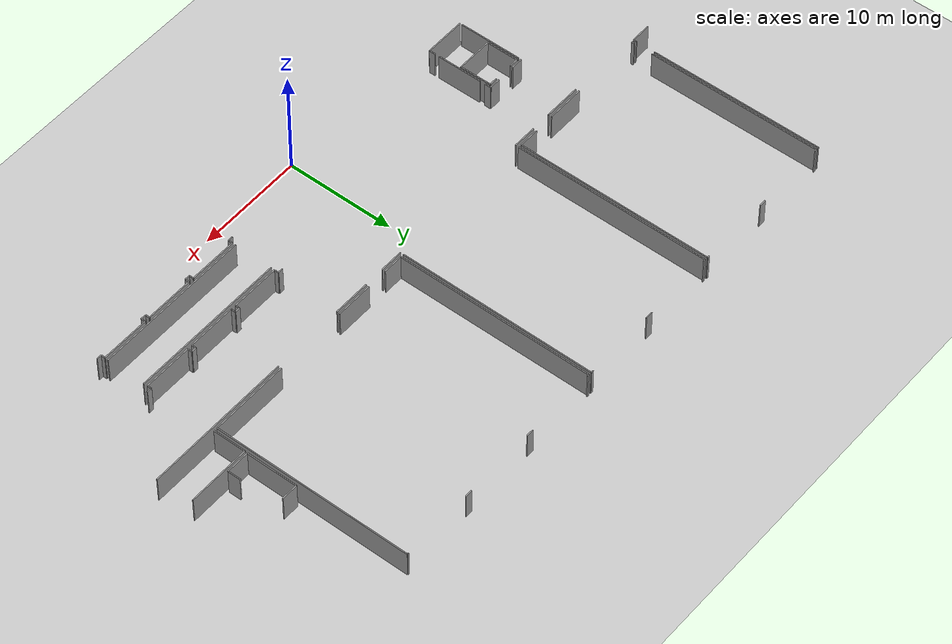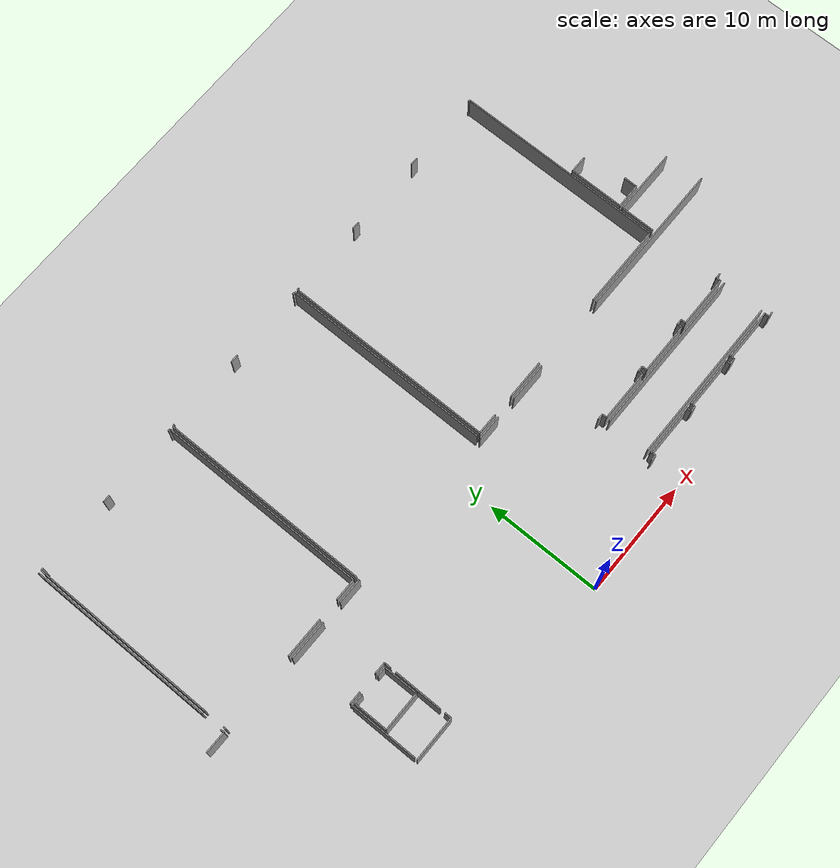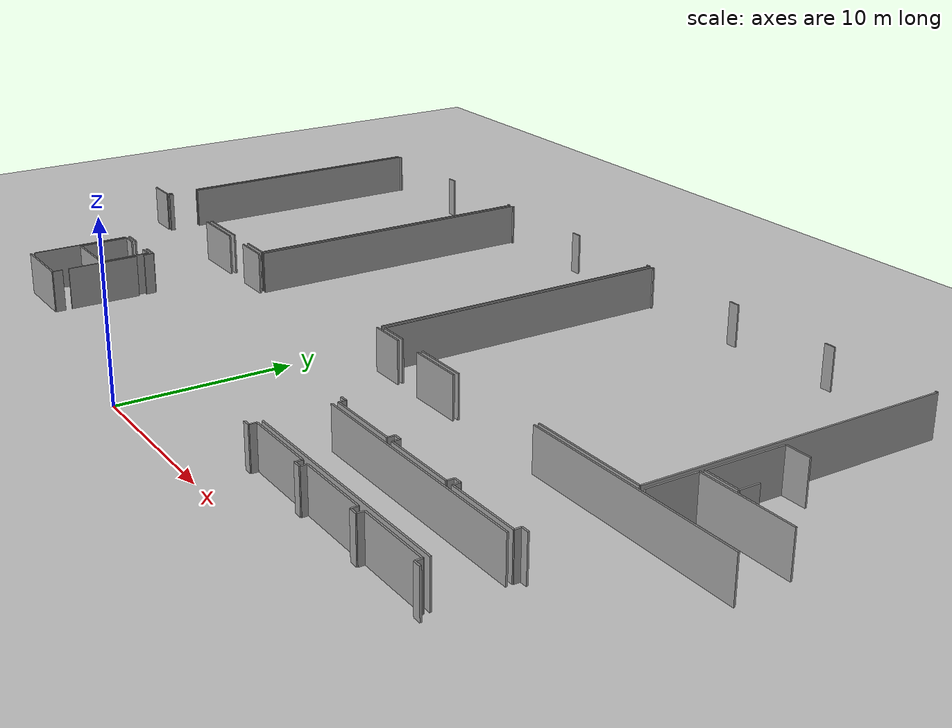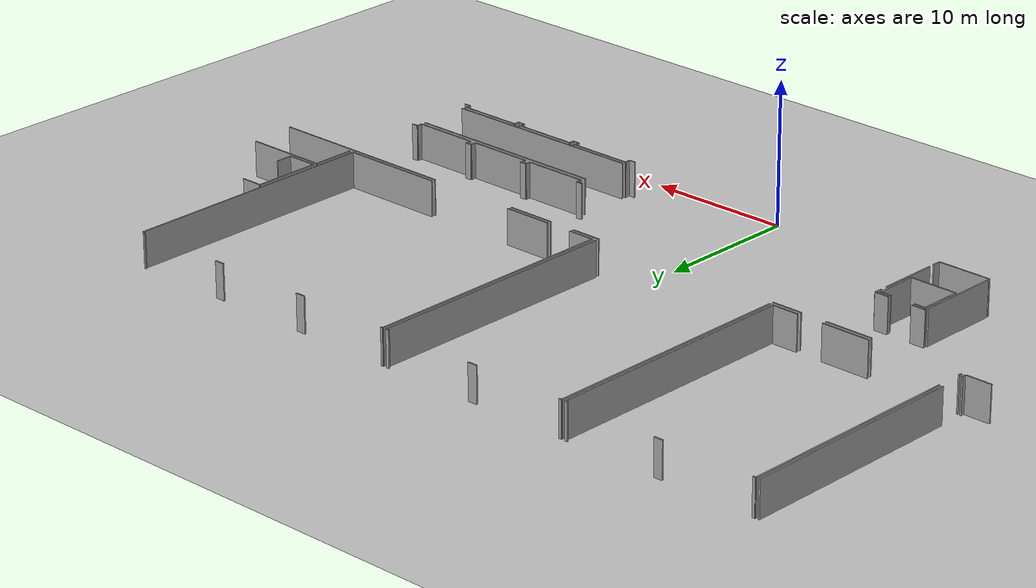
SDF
<sdf version="1.6">
 <world name="default">
  <model name="ground_plane">
   <static>1</static>
   <link name="link">
    <collision name="collision">
     <geometry><plane><normal>0 0 1</normal><size>100 100</size></plane></geometry>
     <surface><friction><ode><mu>100</mu><mu2>50</mu2></ode></friction></surface>
    </collision>
    <visual name="visual">
     <cast_shadows>0</cast_shadows>
     <geometry><plane><normal>0 0 1</normal><size>100 100</size></plane></geometry>
     <material>
      <script><uri>file://media/materials/scripts/gazebo.material</uri><name>Gazebo/Grey</name></script>
     </material>
    </visual>
   </link>
  </model>
  <model name="0510032217_A-40">
   <static>1</static>
   <link name="Wall_10">
    <collision name="Wall_10_Collision">
     <geometry><box><size>3.46969850777 0.1 2.5</size></box></geometry>
     <pose>1.73484925388 0 1.25 0 0 0</pose>
    </collision>
    <visual name="Wall_10_Visual">
     <pose>1.73484925388 0 1.25 0 0 0</pose>
     <geometry><box><size>3.46969850777 0.1 2.5</size></box></geometry>
     <material>
      <script><uri>file://media/materials/scripts/gazebo.material</uri><name>Gazebo/Grey</name></script>
      <ambient>1 1 1 1</ambient>
     </material>
    </visual>
    <pose>58.1786747538 -39.4602324637 0 0 0 0.0</pose>
   </link>
   <link name="Wall_11">
    <collision name="Wall_11_Collision">
     <geometry><box><size>2.21639935032 0.1 2.5</size></box></geometry>
     <pose>1.10819967516 0 1.25 0 0 0</pose>
    </collision>
    <visual name="Wall_11_Visual">
     <pose>1.10819967516 0 1.25 0 0 0</pose>
     <geometry><box><size>2.21639935032 0.1 2.5</size></box></geometry>
     <material>
      <script><uri>file://media/materials/scripts/gazebo.material</uri><name>Gazebo/Grey</name></script>
      <ambient>1 1 1 1</ambient>
     </material>
    </visual>
    <pose>63.5373946807 -39.4602324637 0 0 0 0.0</pose>
   </link>
   <link name="Wall_12">
    <collision name="Wall_12_Collision">
     <geometry><box><size>2.18010861841 0.1 2.5</size></box></geometry>
     <pose>1.09005430921 0 1.25 0 0 0</pose>
    </collision>
    <visual name="Wall_12_Visual">
     <pose>1.09005430921 0 1.25 0 0 0</pose>
     <geometry><box><size>2.18010861841 0.1 2.5</size></box></geometry>
     <material>
      <script><uri>file://media/materials/scripts/gazebo.material</uri><name>Gazebo/Grey</name></script>
      <ambient>1 1 1 1</ambient>
     </material>
    </visual>
    <pose>79.8513475789 -39.4602324637 0 0 0 0.0</pose>
   </link>
   <link name="Wall_13">
    <collision name="Wall_13_Collision">
     <geometry><box><size>3.42820525835 0.1 2.5</size></box></geometry>
     <pose>1.71410262917 0 1.25 0 0 0</pose>
    </collision>
    <visual name="Wall_13_Visual">
     <pose>1.71410262917 0 1.25 0 0 0</pose>
     <geometry><box><size>3.42820525835 0.1 2.5</size></box></geometry>
     <material>
      <script><uri>file://media/materials/scripts/gazebo.material</uri><name>Gazebo/Grey</name></script>
      <ambient>1 1 1 1</ambient>
     </material>
    </visual>
    <pose>83.9263145874 -39.4602324637 0 0 0 0.0</pose>
   </link>
   <link name="Wall_14">
    <collision name="Wall_14_Collision">
     <geometry><box><size>13.5959547254 0.1 2.5</size></box></geometry>
     <pose>6.7979773627 0 1.25 0 0 0</pose>
    </collision>
    <visual name="Wall_14_Visual">
     <pose>6.7979773627 0 1.25 0 0 0</pose>
     <geometry><box><size>13.5959547254 0.1 2.5</size></box></geometry>
     <material>
      <script><uri>file://media/materials/scripts/gazebo.material</uri><name>Gazebo/Grey</name></script>
      <ambient>1 1 1 1</ambient>
     </material>
    </visual>
    <pose>94.1161430312 -39.4602324637 0 0 0 0.0</pose>
   </link>
   <link name="Wall_26">
    <collision name="Wall_26_Collision">
     <geometry><box><size>0.450588772713 0.1 2.5</size></box></geometry>
     <pose>0.225294386357 0 1.25 0 0 0</pose>
    </collision>
    <visual name="Wall_26_Visual">
     <pose>0.225294386357 0 1.25 0 0 0</pose>
     <geometry><box><size>0.450588772713 0.1 2.5</size></box></geometry>
     <material>
      <script><uri>file://media/materials/scripts/gazebo.material</uri><name>Gazebo/Grey</name></script>
      <ambient>1 1 1 1</ambient>
     </material>
    </visual>
    <pose>102.113808243 -45.4237133286 0 0 0 3.14159265359</pose>
   </link>
   <link name="Wall_27">
    <collision name="Wall_27_Collision">
     <geometry><box><size>0.38917368795 0.1 2.5</size></box></geometry>
     <pose>0.194586843975 0 1.25 0 0 0</pose>
    </collision>
    <visual name="Wall_27_Visual">
     <pose>0.194586843975 0 1.25 0 0 0</pose>
     <geometry><box><size>0.38917368795 0.1 2.5</size></box></geometry>
     <material>
      <script><uri>file://media/materials/scripts/gazebo.material</uri><name>Gazebo/Grey</name></script>
      <ambient>1 1 1 1</ambient>
     </material>
    </visual>
    <pose>101.66321947 -45.4237133286 0 0 0 -1.57079632679</pose>
   </link>
   <link name="Wall_28">
    <collision name="Wall_28_Collision">
     <geometry><box><size>4.52200284235 0.1 2.5</size></box></geometry>
     <pose>2.26100142118 0 1.25 0 0 0</pose>
    </collision>
    <visual name="Wall_28_Visual">
     <pose>2.26100142118 0 1.25 0 0 0</pose>
     <geometry><box><size>4.52200284235 0.1 2.5</size></box></geometry>
     <material>
      <script><uri>file://media/materials/scripts/gazebo.material</uri><name>Gazebo/Grey</name></script>
      <ambient>1 1 1 1</ambient>
     </material>
    </visual>
    <pose>101.66321947 -45.8128870165 0 0 0 3.14159265359</pose>
   </link>
   <link name="Wall_29">
    <collision name="Wall_29_Collision">
     <geometry><box><size>0.408841741955 0.1 2.5</size></box></geometry>
     <pose>0.204420870978 0 1.25 0 0 0</pose>
    </collision>
    <visual name="Wall_29_Visual">
     <pose>0.204420870978 0 1.25 0 0 0</pose>
     <geometry><box><size>0.408841741955 0.1 2.5</size></box></geometry>
     <material>
      <script><uri>file://media/materials/scripts/gazebo.material</uri><name>Gazebo/Grey</name></script>
      <ambient>1 1 1 1</ambient>
     </material>
    </visual>
    <pose>97.1412166278 -45.8128870165 0 0 0 1.57079632679</pose>
   </link>
   <link name="Wall_30">
    <collision name="Wall_30_Collision">
     <geometry><box><size>0.458963556999 0.1 2.5</size></box></geometry>
     <pose>0.2294817785 0 1.25 0 0 0</pose>
    </collision>
    <visual name="Wall_30_Visual">
     <pose>0.2294817785 0 1.25 0 0 0</pose>
     <geometry><box><size>0.458963556999 0.1 2.5</size></box></geometry>
     <material>
      <script><uri>file://media/materials/scripts/gazebo.material</uri><name>Gazebo/Grey</name></script>
      <ambient>1 1 1 1</ambient>
     </material>
    </visual>
    <pose>97.1412166278 -45.4040452746 0 0 0 3.14159265359</pose>
   </link>
   <link name="Wall_31">
    <collision name="Wall_31_Collision">
     <geometry><box><size>0.425591310527 0.1 2.5</size></box></geometry>
     <pose>0.212795655263 0 1.25 0 0 0</pose>
    </collision>
    <visual name="Wall_31_Visual">
     <pose>0.212795655263 0 1.25 0 0 0</pose>
     <geometry><box><size>0.425591310527 0.1 2.5</size></box></geometry>
     <material>
      <script><uri>file://media/materials/scripts/gazebo.material</uri><name>Gazebo/Grey</name></script>
      <ambient>1 1 1 1</ambient>
     </material>
    </visual>
    <pose>96.6822530708 -45.4040452746 0 0 0 -1.57079632679</pose>
   </link>
   <link name="Wall_32">
    <collision name="Wall_32_Collision">
     <geometry><box><size>4.48736168917 0.1 2.5</size></box></geometry>
     <pose>2.24368084458 0 1.25 0 0 0</pose>
    </collision>
    <visual name="Wall_32_Visual">
     <pose>2.24368084458 0 1.25 0 0 0</pose>
     <geometry><box><size>4.48736168917 0.1 2.5</size></box></geometry>
     <material>
      <script><uri>file://media/materials/scripts/gazebo.material</uri><name>Gazebo/Grey</name></script>
      <ambient>1 1 1 1</ambient>
     </material>
    </visual>
    <pose>96.6822530708 -45.8296365851 0 0 0 3.14159265359</pose>
   </link>
   <link name="Wall_33">
    <collision name="Wall_33_Collision">
     <geometry><box><size>0.4335854228 0.1 2.5</size></box></geometry>
     <pose>0.2167927114 0 1.25 0 0 0</pose>
    </collision>
    <visual name="Wall_33_Visual">
     <pose>0.2167927114 0 1.25 0 0 0</pose>
     <geometry><box><size>0.4335854228 0.1 2.5</size></box></geometry>
     <material>
      <script><uri>file://media/materials/scripts/gazebo.material</uri><name>Gazebo/Grey</name></script>
      <ambient>1 1 1 1</ambient>
     </material>
    </visual>
    <pose>92.1948913816 -45.8296365851 0 0 0 1.57079632679</pose>
   </link>
   <link name="Wall_34">
    <collision name="Wall_34_Collision">
     <geometry><box><size>0.47177951477 0.1 2.5</size></box></geometry>
     <pose>0.235889757385 0 1.25 0 0 0</pose>
    </collision>
    <visual name="Wall_34_Visual">
     <pose>0.235889757385 0 1.25 0 0 0</pose>
     <geometry><box><size>0.47177951477 0.1 2.5</size></box></geometry>
     <material>
      <script><uri>file://media/materials/scripts/gazebo.material</uri><name>Gazebo/Grey</name></script>
      <ambient>1 1 1 1</ambient>
     </material>
    </visual>
    <pose>92.1948913816 -45.3960511623 0 0 0 3.14159265359</pose>
   </link>
   <link name="Wall_35">
    <collision name="Wall_35_Collision">
     <geometry><box><size>0.411506446046 0.1 2.5</size></box></geometry>
     <pose>0.205753223023 0 1.25 0 0 0</pose>
    </collision>
    <visual name="Wall_35_Visual">
     <pose>0.205753223023 0 1.25 0 0 0</pose>
     <geometry><box><size>0.411506446046 0.1 2.5</size></box></geometry>
     <material>
      <script><uri>file://media/materials/scripts/gazebo.material</uri><name>Gazebo/Grey</name></script>
      <ambient>1 1 1 1</ambient>
     </material>
    </visual>
    <pose>91.7231118668 -45.3960511623 0 0 0 -1.57079632679</pose>
   </link>
   <link name="Wall_36">
    <collision name="Wall_36_Collision">
     <geometry><box><size>4.50931377525 0.1 2.5</size></box></geometry>
     <pose>2.25465688763 0 1.25 0 0 0</pose>
    </collision>
    <visual name="Wall_36_Visual">
     <pose>2.25465688763 0 1.25 0 0 0</pose>
     <geometry><box><size>4.50931377525 0.1 2.5</size></box></geometry>
     <material>
      <script><uri>file://media/materials/scripts/gazebo.material</uri><name>Gazebo/Grey</name></script>
      <ambient>1 1 1 1</ambient>
     </material>
    </visual>
    <pose>91.7231118668 -45.8075576084 0 0 0 3.14159265359</pose>
   </link>
   <link name="Wall_37">
    <collision name="Wall_37_Collision">
     <geometry><box><size>0.400466957669 0.1 2.5</size></box></geometry>
     <pose>0.200233478835 0 1.25 0 0 0</pose>
    </collision>
    <visual name="Wall_37_Visual">
     <pose>0.200233478835 0 1.25 0 0 0</pose>
     <geometry><box><size>0.400466957669 0.1 2.5</size></box></geometry>
     <material>
      <script><uri>file://media/materials/scripts/gazebo.material</uri><name>Gazebo/Grey</name></script>
      <ambient>1 1 1 1</ambient>
     </material>
    </visual>
    <pose>87.2137980916 -45.8075576084 0 0 0 1.57079632679</pose>
   </link>
   <link name="Wall_38">
    <collision name="Wall_38_Collision">
     <geometry><box><size>0.460866917064 0.1 2.5</size></box></geometry>
     <pose>0.230433458532 0 1.25 0 0 0</pose>
    </collision>
    <visual name="Wall_38_Visual">
     <pose>0.230433458532 0 1.25 0 0 0</pose>
     <geometry><box><size>0.460866917064 0.1 2.5</size></box></geometry>
     <material>
      <script><uri>file://media/materials/scripts/gazebo.material</uri><name>Gazebo/Grey</name></script>
      <ambient>1 1 1 1</ambient>
     </material>
    </visual>
    <pose>87.2137980916 -45.4070906507 0 0 0 3.14159265359</pose>
   </link>
   <link name="Wall_39">
    <collision name="Wall_39_Collision">
     <geometry><box><size>0.600065983149 0.1 2.5</size></box></geometry>
     <pose>0.300032991574 0 1.25 0 0 0</pose>
    </collision>
    <visual name="Wall_39_Visual">
     <pose>0.300032991574 0 1.25 0 0 0</pose>
     <geometry><box><size>0.600065983149 0.1 2.5</size></box></geometry>
     <material>
      <script><uri>file://media/materials/scripts/gazebo.material</uri><name>Gazebo/Grey</name></script>
      <ambient>1 1 1 1</ambient>
     </material>
    </visual>
    <pose>62.2229342199 -45.4070906507 0 0 0 1.57079632679</pose>
   </link>
   <link name="Wall_40">
    <collision name="Wall_40_Collision">
     <geometry><box><size>1.02273880824 0.1 2.5</size></box></geometry>
     <pose>0.511369404121 0 1.25 0 0 0</pose>
    </collision>
    <visual name="Wall_40_Visual">
     <pose>0.511369404121 0 1.25 0 0 0</pose>
     <geometry><box><size>1.02273880824 0.1 2.5</size></box></geometry>
     <material>
      <script><uri>file://media/materials/scripts/gazebo.material</uri><name>Gazebo/Grey</name></script>
      <ambient>1 1 1 1</ambient>
     </material>
    </visual>
    <pose>62.2229342199 -44.8070246675 0 0 0 3.14159265359</pose>
   </link>
   <link name="Wall_41">
    <collision name="Wall_41_Collision">
     <geometry><box><size>1.06854634047 0.1 2.5</size></box></geometry>
     <pose>0.534273170237 0 1.25 0 0 0</pose>
    </collision>
    <visual name="Wall_41_Visual">
     <pose>0.534273170237 0 1.25 0 0 0</pose>
     <geometry><box><size>1.06854634047 0.1 2.5</size></box></geometry>
     <material>
      <script><uri>file://media/materials/scripts/gazebo.material</uri><name>Gazebo/Grey</name></script>
      <ambient>1 1 1 1</ambient>
     </material>
    </visual>
    <pose>59.4562100294 -44.8070246675 0 0 0 3.14159265359</pose>
   </link>
   <link name="Wall_55">
    <collision name="Wall_55_Collision">
     <geometry><box><size>1.88914830982 0.1 2.5</size></box></geometry>
     <pose>0.944574154908 0 1.25 0 0 0</pose>
    </collision>
    <visual name="Wall_55_Visual">
     <pose>0.944574154908 0 1.25 0 0 0</pose>
     <geometry><box><size>1.88914830982 0.1 2.5</size></box></geometry>
     <material>
      <script><uri>file://media/materials/scripts/gazebo.material</uri><name>Gazebo/Grey</name></script>
      <ambient>1 1 1 1</ambient>
     </material>
    </visual>
    <pose>51.0696249112 -39.1716830779 0 0 0 3.14159265359</pose>
   </link>
   <link name="Wall_62">
    <collision name="Wall_62_Collision">
     <geometry><box><size>16.1110547153 0.1 2.5</size></box></geometry>
     <pose>8.05552735763 0 1.25 0 0 0</pose>
    </collision>
    <visual name="Wall_62_Visual">
     <pose>8.05552735763 0 1.25 0 0 0</pose>
     <geometry><box><size>16.1110547153 0.1 2.5</size></box></geometry>
     <material>
      <script><uri>file://media/materials/scripts/gazebo.material</uri><name>Gazebo/Grey</name></script>
      <ambient>1 1 1 1</ambient>
     </material>
    </visual>
    <pose>51.0711475992 -20.972007918 0 0 0 -1.57079632679</pose>
   </link>
   <link name="Wall_63">
    <collision name="Wall_63_Collision">
     <geometry><box><size>0.314565658791 0.1 2.5</size></box></geometry>
     <pose>0.157282829395 0 1.25 0 0 0</pose>
    </collision>
    <visual name="Wall_63_Visual">
     <pose>0.157282829395 0 1.25 0 0 0</pose>
     <geometry><box><size>0.314565658791 0.1 2.5</size></box></geometry>
     <material>
      <script><uri>file://media/materials/scripts/gazebo.material</uri><name>Gazebo/Grey</name></script>
      <ambient>1 1 1 1</ambient>
     </material>
    </visual>
    <pose>51.0711475992 -38.8571211045 0 0 0 -1.57563695054</pose>
   </link>
   <link name="Wall_64">
    <collision name="Wall_64_Collision">
     <geometry><box><size>1.90945081718 0.1 2.5</size></box></geometry>
     <pose>0.954725408588 0 1.25 0 0 0</pose>
    </collision>
    <visual name="Wall_64_Visual">
     <pose>0.954725408588 0 1.25 0 0 0</pose>
     <geometry><box><size>1.90945081718 0.1 2.5</size></box></geometry>
     <material>
      <script><uri>file://media/materials/scripts/gazebo.material</uri><name>Gazebo/Grey</name></script>
      <ambient>1 1 1 1</ambient>
     </material>
    </visual>
    <pose>65.4630875038 -39.1464318343 0 0 0 3.14159265359</pose>
   </link>
   <link name="Wall_65">
    <collision name="Wall_65_Collision">
     <geometry><box><size>3.52083544818 0.1 2.5</size></box></geometry>
     <pose>1.76041772409 0 1.25 0 0 0</pose>
    </collision>
    <visual name="Wall_65_Visual">
     <pose>1.76041772409 0 1.25 0 0 0</pose>
     <geometry><box><size>3.52083544818 0.1 2.5</size></box></geometry>
     <material>
      <script><uri>file://media/materials/scripts/gazebo.material</uri><name>Gazebo/Grey</name></script>
      <ambient>1 1 1 1</ambient>
     </material>
    </visual>
    <pose>61.6572556086 -39.1464318343 0 0 0 3.14159265359</pose>
   </link>
   <link name="Wall_66">
    <collision name="Wall_66_Collision">
     <geometry><box><size>0.266851081109 0.1 2.5</size></box></geometry>
     <pose>0.133425540554 0 1.25 0 0 0</pose>
    </collision>
    <visual name="Wall_66_Visual">
     <pose>0.133425540554 0 1.25 0 0 0</pose>
     <geometry><box><size>0.266851081109 0.1 2.5</size></box></geometry>
     <material>
      <script><uri>file://media/materials/scripts/gazebo.material</uri><name>Gazebo/Grey</name></script>
      <ambient>1 1 1 1</ambient>
     </material>
    </visual>
    <pose>51.336602883 -39.1464318343 0 0 0 1.57079632679</pose>
   </link>
   <link name="Wall_67">
    <collision name="Wall_67_Collision">
     <geometry><box><size>16.1290731905 0.1 2.5</size></box></geometry>
     <pose>8.06453659527 0 1.25 0 0 0</pose>
    </collision>
    <visual name="Wall_67_Visual">
     <pose>8.06453659527 0 1.25 0 0 0</pose>
     <geometry><box><size>16.1290731905 0.1 2.5</size></box></geometry>
     <material>
      <script><uri>file://media/materials/scripts/gazebo.material</uri><name>Gazebo/Grey</name></script>
      <ambient>1 1 1 1</ambient>
     </material>
    </visual>
    <pose>51.336602883 -37.1039995939 0 0 0 1.57079632679</pose>
   </link>
   <link name="Wall_68">
    <collision name="Wall_68_Collision">
     <geometry><box><size>0.200233478835 0.1 2.5</size></box></geometry>
     <pose>0.100116739417 0 1.25 0 0 0</pose>
    </collision>
    <visual name="Wall_68_Visual">
     <pose>0.100116739417 0 1.25 0 0 0</pose>
     <geometry><box><size>0.200233478835 0.1 2.5</size></box></geometry>
     <material>
      <script><uri>file://media/materials/scripts/gazebo.material</uri><name>Gazebo/Grey</name></script>
      <ambient>1 1 1 1</ambient>
     </material>
    </visual>
    <pose>51.336602883 -20.9749264034 0 0 0 0.0</pose>
   </link>
   <link name="Wall_69">
    <collision name="Wall_69_Collision">
     <geometry><box><size>0.642320576591 0.1 2.5</size></box></geometry>
     <pose>0.321160288296 0 1.25 0 0 0</pose>
    </collision>
    <visual name="Wall_69_Visual">
     <pose>0.321160288296 0 1.25 0 0 0</pose>
     <geometry><box><size>0.642320576591 0.1 2.5</size></box></geometry>
     <material>
      <script><uri>file://media/materials/scripts/gazebo.material</uri><name>Gazebo/Grey</name></script>
      <ambient>1 1 1 1</ambient>
     </material>
    </visual>
    <pose>58.0780504517 -20.9749264034 0 0 0 0.0</pose>
   </link>
   <link name="Wall_70">
    <collision name="Wall_70_Collision">
     <geometry><box><size>0.201883057558 0.1 2.5</size></box></geometry>
     <pose>0.100941528779 0 1.25 0 0 0</pose>
    </collision>
    <visual name="Wall_70_Visual">
     <pose>0.100941528779 0 1.25 0 0 0</pose>
     <geometry><box><size>0.201883057558 0.1 2.5</size></box></geometry>
     <material>
      <script><uri>file://media/materials/scripts/gazebo.material</uri><name>Gazebo/Grey</name></script>
      <ambient>1 1 1 1</ambient>
     </material>
    </visual>
    <pose>65.2695792305 -20.9749264034 0 0 0 0.0</pose>
   </link>
   <link name="Wall_71">
    <collision name="Wall_71_Collision">
     <geometry><box><size>18.1715073608 0.1 2.5</size></box></geometry>
     <pose>9.08575368039 0 1.25 0 0 0</pose>
    </collision>
    <visual name="Wall_71_Visual">
     <pose>9.08575368039 0 1.25 0 0 0</pose>
     <geometry><box><size>18.1715073608 0.1 2.5</size></box></geometry>
     <material>
      <script><uri>file://media/materials/scripts/gazebo.material</uri><name>Gazebo/Grey</name></script>
      <ambient>1 1 1 1</ambient>
     </material>
    </visual>
    <pose>65.4714622881 -20.9749264034 0 0 0 -1.57125720131</pose>
   </link>
   <link name="Wall_72">
    <collision name="Wall_72_Collision">
     <geometry><box><size>18.2071617095 0.1 2.5</size></box></geometry>
     <pose>9.10358085474 0 1.25 0 0 0</pose>
    </collision>
    <visual name="Wall_72_Visual">
     <pose>9.10358085474 0 1.25 0 0 0</pose>
     <geometry><box><size>18.2071617095 0.1 2.5</size></box></geometry>
     <material>
      <script><uri>file://media/materials/scripts/gazebo.material</uri><name>Gazebo/Grey</name></script>
      <ambient>1 1 1 1</ambient>
     </material>
    </visual>
    <pose>65.7537940311 -39.1904628972 0 0 0 1.57079632679</pose>
   </link>
   <link name="Wall_73">
    <collision name="Wall_73_Collision">
     <geometry><box><size>0.183610800934 0.1 2.5</size></box></geometry>
     <pose>0.091805400467 0 1.25 0 0 0</pose>
    </collision>
    <visual name="Wall_73_Visual">
     <pose>0.091805400467 0 1.25 0 0 0</pose>
     <geometry><box><size>0.183610800934 0.1 2.5</size></box></geometry>
     <material>
      <script><uri>file://media/materials/scripts/gazebo.material</uri><name>Gazebo/Grey</name></script>
      <ambient>1 1 1 1</ambient>
     </material>
    </visual>
    <pose>65.7537940311 -20.9833011877 0 0 0 0.0</pose>
   </link>
   <link name="Wall_74">
    <collision name="Wall_74_Collision">
     <geometry><box><size>0.691681047609 0.1 2.5</size></box></geometry>
     <pose>0.345840523805 0 1.25 0 0 0</pose>
    </collision>
    <visual name="Wall_74_Visual">
     <pose>0.345840523805 0 1.25 0 0 0</pose>
     <geometry><box><size>0.691681047609 0.1 2.5</size></box></geometry>
     <material>
      <script><uri>file://media/materials/scripts/gazebo.material</uri><name>Gazebo/Grey</name></script>
      <ambient>1 1 1 1</ambient>
     </material>
    </visual>
    <pose>72.4409323927 -20.9833011877 0 0 0 0.0</pose>
   </link>
   <link name="Wall_75">
    <collision name="Wall_75_Collision">
     <geometry><box><size>0.233732615978 0.1 2.5</size></box></geometry>
     <pose>0.116866307989 0 1.25 0 0 0</pose>
    </collision>
    <visual name="Wall_75_Visual">
     <pose>0.116866307989 0 1.25 0 0 0</pose>
     <geometry><box><size>0.233732615978 0.1 2.5</size></box></geometry>
     <material>
      <script><uri>file://media/materials/scripts/gazebo.material</uri><name>Gazebo/Grey</name></script>
      <ambient>1 1 1 1</ambient>
     </material>
    </visual>
    <pose>79.6440082225 -20.9833011877 0 0 0 0.0</pose>
   </link>
   <link name="Wall_76">
    <collision name="Wall_76_Collision">
     <geometry><box><size>18.2071808394 0.1 2.5</size></box></geometry>
     <pose>9.10359041971 0 1.25 0 0 0</pose>
    </collision>
    <visual name="Wall_76_Visual">
     <pose>9.10359041971 0 1.25 0 0 0</pose>
     <geometry><box><size>18.2071808394 0.1 2.5</size></box></geometry>
     <material>
      <script><uri>file://media/materials/scripts/gazebo.material</uri><name>Gazebo/Grey</name></script>
      <ambient>1 1 1 1</ambient>
     </material>
    </visual>
    <pose>79.8777408385 -20.9833011877 0 0 0 -1.57224593445</pose>
   </link>
   <link name="Wall_77">
    <collision name="Wall_77_Collision">
     <geometry><box><size>7.25167495686 0.1 2.5</size></box></geometry>
     <pose>3.62583747843 0 1.25 0 0 0</pose>
    </collision>
    <visual name="Wall_77_Visual">
     <pose>3.62583747843 0 1.25 0 0 0</pose>
     <geometry><box><size>7.25167495686 0.1 2.5</size></box></geometry>
     <material>
      <script><uri>file://media/materials/scripts/gazebo.material</uri><name>Gazebo/Grey</name></script>
      <ambient>1 1 1 1</ambient>
     </material>
    </visual>
    <pose>101.367564207 -39.1795502995 0 0 0 3.14159265359</pose>
   </link>
   <link name="Wall_78">
    <collision name="Wall_78_Collision">
     <geometry><box><size>3.45409095523 0.1 2.5</size></box></geometry>
     <pose>1.72704547762 0 1.25 0 0 0</pose>
    </collision>
    <visual name="Wall_78_Visual">
     <pose>1.72704547762 0 1.25 0 0 0</pose>
     <geometry><box><size>3.45409095523 0.1 2.5</size></box></geometry>
     <material>
      <script><uri>file://media/materials/scripts/gazebo.material</uri><name>Gazebo/Grey</name></script>
      <ambient>1 1 1 1</ambient>
     </material>
    </visual>
    <pose>87.3995660339 -39.1795502995 0 0 0 3.14159265359</pose>
   </link>
   <link name="Wall_79">
    <collision name="Wall_79_Collision">
     <geometry><box><size>1.87798193077 0.1 2.5</size></box></geometry>
     <pose>0.938990965384 0 1.25 0 0 0</pose>
    </collision>
    <visual name="Wall_79_Visual">
     <pose>0.938990965384 0 1.25 0 0 0</pose>
     <geometry><box><size>1.87798193077 0.1 2.5</size></box></geometry>
     <material>
      <script><uri>file://media/materials/scripts/gazebo.material</uri><name>Gazebo/Grey</name></script>
      <ambient>1 1 1 1</ambient>
     </material>
    </visual>
    <pose>82.0366587149 -39.1795502995 0 0 0 3.14159265359</pose>
   </link>
   <link name="Wall_80">
    <collision name="Wall_80_Collision">
     <geometry><box><size>18.1878743275 0.1 2.5</size></box></geometry>
     <pose>9.09393716374 0 1.25 0 0 0</pose>
    </collision>
    <visual name="Wall_80_Visual">
     <pose>9.09393716374 0 1.25 0 0 0</pose>
     <geometry><box><size>18.1878743275 0.1 2.5</size></box></geometry>
     <material>
      <script><uri>file://media/materials/scripts/gazebo.material</uri><name>Gazebo/Grey</name></script>
      <ambient>1 1 1 1</ambient>
     </material>
    </visual>
    <pose>80.1586767841 -39.1795502995 0 0 0 1.57079632679</pose>
   </link>
   <link name="Wall_81">
    <collision name="Wall_81_Collision">
     <geometry><box><size>0.162420058877 0.1 2.5</size></box></geometry>
     <pose>0.0812100294386 0 1.25 0 0 0</pose>
    </collision>
    <visual name="Wall_81_Visual">
     <pose>0.0812100294386 0 1.25 0 0 0</pose>
     <geometry><box><size>0.162420058877 0.1 2.5</size></box></geometry>
     <material>
      <script><uri>file://media/materials/scripts/gazebo.material</uri><name>Gazebo/Grey</name></script>
      <ambient>1 1 1 1</ambient>
     </material>
    </visual>
    <pose>80.1586767841 -20.991675972 0 0 0 0.0</pose>
   </link>
   <link name="Wall_82">
    <collision name="Wall_82_Collision">
     <geometry><box><size>0.685717186072 0.1 2.5</size></box></geometry>
     <pose>0.342858593036 0 1.25 0 0 0</pose>
    </collision>
    <visual name="Wall_82_Visual">
     <pose>0.342858593036 0 1.25 0 0 0</pose>
     <geometry><box><size>0.685717186072 0.1 2.5</size></box></geometry>
     <material>
      <script><uri>file://media/materials/scripts/gazebo.material</uri><name>Gazebo/Grey</name></script>
      <ambient>1 1 1 1</ambient>
     </material>
    </visual>
    <pose>86.8461958177 -20.991675972 0 0 0 0.0</pose>
   </link>
   <link name="Wall_83">
    <collision name="Wall_83_Collision">
     <geometry><box><size>0.685717186072 0.1 2.5</size></box></geometry>
     <pose>0.342858593036 0 1.25 0 0 0</pose>
    </collision>
    <visual name="Wall_83_Visual">
     <pose>0.342858593036 0 1.25 0 0 0</pose>
     <geometry><box><size>0.685717186072 0.1 2.5</size></box></geometry>
     <material>
      <script><uri>file://media/materials/scripts/gazebo.material</uri><name>Gazebo/Grey</name></script>
      <ambient>1 1 1 1</ambient>
     </material>
    </visual>
    <pose>94.0217363719 -20.991675972 0 0 0 0.0</pose>
   </link>
   <link name="Wall_84">
    <collision name="Wall_84_Collision">
     <geometry><box><size>0.128667140392 0.1 2.5</size></box></geometry>
     <pose>0.0643335701959 0 1.25 0 0 0</pose>
    </collision>
    <visual name="Wall_84_Visual">
     <pose>0.0643335701959 0 1.25 0 0 0</pose>
     <geometry><box><size>0.128667140392 0.1 2.5</size></box></geometry>
     <material>
      <script><uri>file://media/materials/scripts/gazebo.material</uri><name>Gazebo/Grey</name></script>
      <ambient>1 1 1 1</ambient>
     </material>
    </visual>
    <pose>101.229380266 -20.991675972 0 0 0 0.0</pose>
   </link>
   <link name="Wall_85">
    <collision name="Wall_85_Collision">
     <geometry><box><size>18.1878768173 0.1 2.5</size></box></geometry>
     <pose>9.09393840866 0 1.25 0 0 0</pose>
    </collision>
    <visual name="Wall_85_Visual">
     <pose>9.09393840866 0 1.25 0 0 0</pose>
     <geometry><box><size>18.1878768173 0.1 2.5</size></box></geometry>
     <material>
      <script><uri>file://media/materials/scripts/gazebo.material</uri><name>Gazebo/Grey</name></script>
      <ambient>1 1 1 1</ambient>
     </material>
    </visual>
    <pose>101.358047406 -20.991675972 0 0 0 -1.57027307711</pose>
   </link>
   <link name="Wall_94">
    <collision name="Wall_94_Collision">
     <geometry><box><size>1.17551517612 0.1 2.5</size></box></geometry>
     <pose>0.587757588062 0 1.25 0 0 0</pose>
    </collision>
    <visual name="Wall_94_Visual">
     <pose>0.587757588062 0 1.25 0 0 0</pose>
     <geometry><box><size>1.17551517612 0.1 2.5</size></box></geometry>
     <material>
      <script><uri>file://media/materials/scripts/gazebo.material</uri><name>Gazebo/Grey</name></script>
      <ambient>1 1 1 1</ambient>
     </material>
    </visual>
    <pose>103.865787737 -34.750558319 0 0 0 -1.57079632679</pose>
   </link>
   <link name="Wall_95">
    <collision name="Wall_95_Collision">
     <geometry><box><size>2.14419855852 0.1 2.5</size></box></geometry>
     <pose>1.07209927926 0 1.25 0 0 0</pose>
    </collision>
    <visual name="Wall_95_Visual">
     <pose>1.07209927926 0 1.25 0 0 0</pose>
     <geometry><box><size>2.14419855852 0.1 2.5</size></box></geometry>
     <material>
      <script><uri>file://media/materials/scripts/gazebo.material</uri><name>Gazebo/Grey</name></script>
      <ambient>1 1 1 1</ambient>
     </material>
    </visual>
    <pose>103.865787737 -35.9260734951 0 0 0 3.14159265359</pose>
   </link>
   <link name="Wall_96">
    <collision name="Wall_96_Collision">
     <geometry><box><size>4.72946908943 0.1 2.5</size></box></geometry>
     <pose>2.36473454472 0 1.25 0 0 0</pose>
    </collision>
    <visual name="Wall_96_Visual">
     <pose>2.36473454472 0 1.25 0 0 0</pose>
     <geometry><box><size>4.72946908943 0.1 2.5</size></box></geometry>
     <material>
      <script><uri>file://media/materials/scripts/gazebo.material</uri><name>Gazebo/Grey</name></script>
      <ambient>1 1 1 1</ambient>
     </material>
    </visual>
    <pose>101.721589179 -35.9260734951 0 0 0 1.57079632679</pose>
   </link>
   <link name="Wall_97">
    <collision name="Wall_97_Collision">
     <geometry><box><size>1.51418637702 0.1 2.5</size></box></geometry>
     <pose>0.757093188509 0 1.25 0 0 0</pose>
    </collision>
    <visual name="Wall_97_Visual">
     <pose>0.757093188509 0 1.25 0 0 0</pose>
     <geometry><box><size>1.51418637702 0.1 2.5</size></box></geometry>
     <material>
      <script><uri>file://media/materials/scripts/gazebo.material</uri><name>Gazebo/Grey</name></script>
      <ambient>1 1 1 1</ambient>
     </material>
    </visual>
    <pose>101.721589179 -31.1966044056 0 0 0 0.0</pose>
   </link>
   <link name="Wall_102">
    <collision name="Wall_102_Collision">
     <geometry><box><size>3.00756268399 0.1 2.5</size></box></geometry>
     <pose>1.503781342 0 1.25 0 0 0</pose>
    </collision>
    <visual name="Wall_102_Visual">
     <pose>1.503781342 0 1.25 0 0 0</pose>
     <geometry><box><size>3.00756268399 0.1 2.5</size></box></geometry>
     <material>
      <script><uri>file://media/materials/scripts/gazebo.material</uri><name>Gazebo/Grey</name></script>
      <ambient>1 1 1 1</ambient>
     </material>
    </visual>
    <pose>101.695703482 -39.1928738199 0 0 0 1.57079632679</pose>
   </link>
   <link name="Wall_103">
    <collision name="Wall_103_Collision">
     <geometry><box><size>5.77174906101 0.1 2.5</size></box></geometry>
     <pose>2.8858745305 0 1.25 0 0 0</pose>
    </collision>
    <visual name="Wall_103_Visual">
     <pose>2.8858745305 0 1.25 0 0 0</pose>
     <geometry><box><size>5.77174906101 0.1 2.5</size></box></geometry>
     <material>
      <script><uri>file://media/materials/scripts/gazebo.material</uri><name>Gazebo/Grey</name></script>
      <ambient>1 1 1 1</ambient>
     </material>
    </visual>
    <pose>101.695703482 -36.1853111359 0 0 0 0.0</pose>
   </link>
   <link name="Wall_352">
    <collision name="Wall_352_Collision">
     <geometry><box><size>14.5343112374 0.1 2.5</size></box></geometry>
     <pose>7.26715561872 0 1.25 0 0 0</pose>
    </collision>
    <visual name="Wall_352_Visual">
     <pose>7.26715561872 0 1.25 0 0 0</pose>
     <geometry><box><size>14.5343112374 0.1 2.5</size></box></geometry>
     <material>
      <script><uri>file://media/materials/scripts/gazebo.material</uri><name>Gazebo/Grey</name></script>
      <ambient>1 1 1 1</ambient>
     </material>
    </visual>
    <pose>101.712199269 -46.1529540148 0 0 0 3.14159265359</pose>
   </link>
   <link name="Wall_353">
    <collision name="Wall_353_Collision">
     <geometry><box><size>14.5343304003 0.1 2.5</size></box></geometry>
     <pose>7.26716520015 0 1.25 0 0 0</pose>
    </collision>
    <visual name="Wall_353_Visual">
     <pose>7.26716520015 0 1.25 0 0 0</pose>
     <geometry><box><size>14.5343304003 0.1 2.5</size></box></geometry>
     <material>
      <script><uri>file://media/materials/scripts/gazebo.material</uri><name>Gazebo/Grey</name></script>
      <ambient>1 1 1 1</ambient>
     </material>
    </visual>
    <pose>87.1778880317 -49.7567759618 0 0 0 0.00162385707</pose>
   </link>
   <link name="Wall_355">
    <collision name="Wall_355_Collision">
     <geometry><box><size>4.20782154096 0.1 2.5</size></box></geometry>
     <pose>2.10391077048 0 1.25 0 0 0</pose>
    </collision>
    <visual name="Wall_355_Visual">
     <pose>2.10391077048 0 1.25 0 0 0</pose>
     <geometry><box><size>4.20782154096 0.1 2.5</size></box></geometry>
     <material>
      <script><uri>file://media/materials/scripts/gazebo.material</uri><name>Gazebo/Grey</name></script>
      <ambient>1 1 1 1</ambient>
     </material>
    </visual>
    <pose>62.2229342199 -50.084915237 0 0 0 1.57079632679</pose>
   </link>
   <link name="Wall_356">
    <collision name="Wall_356_Collision">
     <geometry><box><size>3.40955232971 0.1 2.5</size></box></geometry>
     <pose>1.70477616486 0 1.25 0 0 0</pose>
    </collision>
    <visual name="Wall_356_Visual">
     <pose>1.70477616486 0 1.25 0 0 0</pose>
     <geometry><box><size>3.40955232971 0.1 2.5</size></box></geometry>
     <material>
      <script><uri>file://media/materials/scripts/gazebo.material</uri><name>Gazebo/Grey</name></script>
      <ambient>1 1 1 1</ambient>
     </material>
    </visual>
    <pose>62.0205435996 -48.0066998274 0 0 0 3.14159265359</pose>
   </link>
   <link name="Wall_357">
    <collision name="Wall_357_Collision">
     <geometry><box><size>2.96974926403 0.1 2.5</size></box></geometry>
     <pose>1.48487463202 0 1.25 0 0 0</pose>
    </collision>
    <visual name="Wall_357_Visual">
     <pose>1.48487463202 0 1.25 0 0 0</pose>
     <geometry><box><size>2.96974926403 0.1 2.5</size></box></geometry>
     <material>
      <script><uri>file://media/materials/scripts/gazebo.material</uri><name>Gazebo/Grey</name></script>
      <ambient>1 1 1 1</ambient>
     </material>
    </visual>
    <pose>58.6109912699 -48.0066998274 0 0 0 1.57079632679</pose>
   </link>
   <link name="Wall_358">
    <collision name="Wall_358_Collision">
     <geometry><box><size>0.826946502893 0.1 2.5</size></box></geometry>
     <pose>0.413473251447 0 1.25 0 0 0</pose>
    </collision>
    <visual name="Wall_358_Visual">
     <pose>0.413473251447 0 1.25 0 0 0</pose>
     <geometry><box><size>0.826946502893 0.1 2.5</size></box></geometry>
     <material>
      <script><uri>file://media/materials/scripts/gazebo.material</uri><name>Gazebo/Grey</name></script>
      <ambient>1 1 1 1</ambient>
     </material>
    </visual>
    <pose>58.6109912699 -45.0369505634 0 0 0 0.0</pose>
   </link>
   <link name="Wall_359">
    <collision name="Wall_359_Collision">
     <geometry><box><size>0.794462491118 0.1 2.5</size></box></geometry>
     <pose>0.397231245559 0 1.25 0 0 0</pose>
    </collision>
    <visual name="Wall_359_Visual">
     <pose>0.397231245559 0 1.25 0 0 0</pose>
     <geometry><box><size>0.794462491118 0.1 2.5</size></box></geometry>
     <material>
      <script><uri>file://media/materials/scripts/gazebo.material</uri><name>Gazebo/Grey</name></script>
      <ambient>1 1 1 1</ambient>
     </material>
    </visual>
    <pose>61.2040021318 -45.0369505634 0 0 0 0.0</pose>
   </link>
   <link name="Wall_360">
    <collision name="Wall_360_Collision">
     <geometry><box><size>2.96983133737 0.1 2.5</size></box></geometry>
     <pose>1.48491566869 0 1.25 0 0 0</pose>
    </collision>
    <visual name="Wall_360_Visual">
     <pose>1.48491566869 0 1.25 0 0 0</pose>
     <geometry><box><size>2.96983133737 0.1 2.5</size></box></geometry>
     <material>
      <script><uri>file://media/materials/scripts/gazebo.material</uri><name>Gazebo/Grey</name></script>
      <ambient>1 1 1 1</ambient>
     </material>
    </visual>
    <pose>61.9984646229 -45.0369505634 0 0 0 -1.56336183721</pose>
   </link>
   <link name="Wall_361">
    <collision name="Wall_361_Collision">
     <geometry><box><size>5.81146584103 0.1 2.5</size></box></geometry>
     <pose>2.90573292052 0 1.25 0 0 0</pose>
    </collision>
    <visual name="Wall_361_Visual">
     <pose>2.90573292052 0 1.25 0 0 0</pose>
     <geometry><box><size>5.81146584103 0.1 2.5</size></box></geometry>
     <material>
      <script><uri>file://media/materials/scripts/gazebo.material</uri><name>Gazebo/Grey</name></script>
      <ambient>1 1 1 1</ambient>
     </material>
    </visual>
    <pose>58.3903283931 -50.8505735458 0 0 0 1.57079632679</pose>
   </link>
   <link name="Wall_474">
    <collision name="Wall_474_Collision">
     <geometry><box><size>3.84478733124 0.1 2.5</size></box></geometry>
     <pose>1.92239366562 0 1.25 0 0 0</pose>
    </collision>
    <visual name="Wall_474_Visual">
     <pose>1.92239366562 0 1.25 0 0 0</pose>
     <geometry><box><size>3.84478733124 0.1 2.5</size></box></geometry>
     <material>
      <script><uri>file://media/materials/scripts/gazebo.material</uri><name>Gazebo/Grey</name></script>
      <ambient>1 1 1 1</ambient>
     </material>
    </visual>
    <pose>58.3842376408 -51.0535986194 0 0 0 0.0</pose>
   </link>
   <link name="Wall_475">
    <collision name="Wall_475_Collision">
     <geometry><box><size>0.586361790681 0.1 2.5</size></box></geometry>
     <pose>0.293180895341 0 1.25 0 0 0</pose>
    </collision>
    <visual name="Wall_475_Visual">
     <pose>0.293180895341 0 1.25 0 0 0</pose>
     <geometry><box><size>0.586361790681 0.1 2.5</size></box></geometry>
     <material>
      <script><uri>file://media/materials/scripts/gazebo.material</uri><name>Gazebo/Grey</name></script>
      <ambient>1 1 1 1</ambient>
     </material>
    </visual>
    <pose>62.2290249721 -51.0535986194 0 0 0 1.57079632679</pose>
   </link>
   <link name="Wall_476">
    <collision name="Wall_476_Collision">
     <geometry><box><size>0.466957669272 0.1 2.5</size></box></geometry>
     <pose>0.233478834636 0 1.25 0 0 0</pose>
    </collision>
    <visual name="Wall_476_Visual">
     <pose>0.233478834636 0 1.25 0 0 0</pose>
     <geometry><box><size>0.466957669272 0.1 2.5</size></box></geometry>
     <material>
      <script><uri>file://media/materials/scripts/gazebo.material</uri><name>Gazebo/Grey</name></script>
      <ambient>1 1 1 1</ambient>
     </material>
    </visual>
    <pose>86.7423992488 -50.4672368287 0 0 0 0.0</pose>
   </link>
   <link name="Wall_477">
    <collision name="Wall_477_Collision">
     <geometry><box><size>0.419754339661 0.1 2.5</size></box></geometry>
     <pose>0.20987716983 0 1.25 0 0 0</pose>
    </collision>
    <visual name="Wall_477_Visual">
     <pose>0.20987716983 0 1.25 0 0 0</pose>
     <geometry><box><size>0.419754339661 0.1 2.5</size></box></geometry>
     <material>
      <script><uri>file://media/materials/scripts/gazebo.material</uri><name>Gazebo/Grey</name></script>
      <ambient>1 1 1 1</ambient>
     </material>
    </visual>
    <pose>87.2093569181 -50.4672368287 0 0 0 1.57079632679</pose>
   </link>
   <link name="Wall_478">
    <collision name="Wall_478_Collision">
     <geometry><box><size>4.50360369506 0.1 2.5</size></box></geometry>
     <pose>2.25180184753 0 1.25 0 0 0</pose>
    </collision>
    <visual name="Wall_478_Visual">
     <pose>2.25180184753 0 1.25 0 0 0</pose>
     <geometry><box><size>4.50360369506 0.1 2.5</size></box></geometry>
     <material>
      <script><uri>file://media/materials/scripts/gazebo.material</uri><name>Gazebo/Grey</name></script>
      <ambient>1 1 1 1</ambient>
     </material>
    </visual>
    <pose>87.2093569181 -50.0474824891 0 0 0 0.0</pose>
   </link>
   <link name="Wall_479">
    <collision name="Wall_479_Collision">
     <geometry><box><size>0.397675362907 0.1 2.5</size></box></geometry>
     <pose>0.198837681454 0 1.25 0 0 0</pose>
    </collision>
    <visual name="Wall_479_Visual">
     <pose>0.198837681454 0 1.25 0 0 0</pose>
     <geometry><box><size>0.397675362907 0.1 2.5</size></box></geometry>
     <material>
      <script><uri>file://media/materials/scripts/gazebo.material</uri><name>Gazebo/Grey</name></script>
      <ambient>1 1 1 1</ambient>
     </material>
    </visual>
    <pose>91.7129606131 -50.0474824891 0 0 0 -1.57079632679</pose>
   </link>
   <link name="Wall_480">
    <collision name="Wall_480_Collision">
     <geometry><box><size>0.474444218861 0.1 2.5</size></box></geometry>
     <pose>0.237222109431 0 1.25 0 0 0</pose>
    </collision>
    <visual name="Wall_480_Visual">
     <pose>0.237222109431 0 1.25 0 0 0</pose>
     <geometry><box><size>0.474444218861 0.1 2.5</size></box></geometry>
     <material>
      <script><uri>file://media/materials/scripts/gazebo.material</uri><name>Gazebo/Grey</name></script>
      <ambient>1 1 1 1</ambient>
     </material>
    </visual>
    <pose>91.7129606131 -50.445157852 0 0 0 0.0</pose>
   </link>
   <link name="Wall_481">
    <collision name="Wall_481_Collision">
     <geometry><box><size>0.37508882347 0.1 2.5</size></box></geometry>
     <pose>0.187544411735 0 1.25 0 0 0</pose>
    </collision>
    <visual name="Wall_481_Visual">
     <pose>0.187544411735 0 1.25 0 0 0</pose>
     <geometry><box><size>0.37508882347 0.1 2.5</size></box></geometry>
     <material>
      <script><uri>file://media/materials/scripts/gazebo.material</uri><name>Gazebo/Grey</name></script>
      <ambient>1 1 1 1</ambient>
     </material>
    </visual>
    <pose>92.187404832 -50.445157852 0 0 0 1.57079632679</pose>
   </link>
   <link name="Wall_482">
    <collision name="Wall_482_Collision">
     <geometry><box><size>4.49078773729 0.1 2.5</size></box></geometry>
     <pose>2.24539386864 0 1.25 0 0 0</pose>
    </collision>
    <visual name="Wall_482_Visual">
     <pose>2.24539386864 0 1.25 0 0 0</pose>
     <geometry><box><size>4.49078773729 0.1 2.5</size></box></geometry>
     <material>
      <script><uri>file://media/materials/scripts/gazebo.material</uri><name>Gazebo/Grey</name></script>
      <ambient>1 1 1 1</ambient>
     </material>
    </visual>
    <pose>92.187404832 -50.0700690285 0 0 0 0.0</pose>
   </link>
   <link name="Wall_483">
    <collision name="Wall_483_Collision">
     <geometry><box><size>0.386128311847 0.1 2.5</size></box></geometry>
     <pose>0.193064155923 0 1.25 0 0 0</pose>
    </collision>
    <visual name="Wall_483_Visual">
     <pose>0.193064155923 0 1.25 0 0 0</pose>
     <geometry><box><size>0.386128311847 0.1 2.5</size></box></geometry>
     <material>
      <script><uri>file://media/materials/scripts/gazebo.material</uri><name>Gazebo/Grey</name></script>
      <ambient>1 1 1 1</ambient>
     </material>
    </visual>
    <pose>96.6781925693 -50.0700690285 0 0 0 -1.57079632679</pose>
   </link>
   <link name="Wall_484">
    <collision name="Wall_484_Collision">
     <geometry><box><size>0.496523195615 0.1 2.5</size></box></geometry>
     <pose>0.248261597807 0 1.25 0 0 0</pose>
    </collision>
    <visual name="Wall_484_Visual">
     <pose>0.248261597807 0 1.25 0 0 0</pose>
     <geometry><box><size>0.496523195615 0.1 2.5</size></box></geometry>
     <material>
      <script><uri>file://media/materials/scripts/gazebo.material</uri><name>Gazebo/Grey</name></script>
      <ambient>1 1 1 1</ambient>
     </material>
    </visual>
    <pose>96.6781925693 -50.4561973404 0 0 0 0.0</pose>
   </link>
   <link name="Wall_485">
    <collision name="Wall_485_Collision">
     <geometry><box><size>0.397167800223 0.1 2.5</size></box></geometry>
     <pose>0.198583900112 0 1.25 0 0 0</pose>
    </collision>
    <visual name="Wall_485_Visual">
     <pose>0.198583900112 0 1.25 0 0 0</pose>
     <geometry><box><size>0.397167800223 0.1 2.5</size></box></geometry>
     <material>
      <script><uri>file://media/materials/scripts/gazebo.material</uri><name>Gazebo/Grey</name></script>
      <ambient>1 1 1 1</ambient>
     </material>
    </visual>
    <pose>97.1747157649 -50.4561973404 0 0 0 1.57079632679</pose>
   </link>
   <link name="Wall_486">
    <collision name="Wall_486_Collision">
     <geometry><box><size>4.49078773729 0.1 2.5</size></box></geometry>
     <pose>2.24539386864 0 1.25 0 0 0</pose>
    </collision>
    <visual name="Wall_486_Visual">
     <pose>2.24539386864 0 1.25 0 0 0</pose>
     <geometry><box><size>4.49078773729 0.1 2.5</size></box></geometry>
     <material>
      <script><uri>file://media/materials/scripts/gazebo.material</uri><name>Gazebo/Grey</name></script>
      <ambient>1 1 1 1</ambient>
     </material>
    </visual>
    <pose>97.1747157649 -50.0590295401 0 0 0 0.0</pose>
   </link>
   <link name="Wall_487">
    <collision name="Wall_487_Collision">
     <geometry><box><size>0.386128311847 0.1 2.5</size></box></geometry>
     <pose>0.193064155923 0 1.25 0 0 0</pose>
    </collision>
    <visual name="Wall_487_Visual">
     <pose>0.193064155923 0 1.25 0 0 0</pose>
     <geometry><box><size>0.386128311847 0.1 2.5</size></box></geometry>
     <material>
      <script><uri>file://media/materials/scripts/gazebo.material</uri><name>Gazebo/Grey</name></script>
      <ambient>1 1 1 1</ambient>
     </material>
    </visual>
    <pose>101.665503502 -50.0590295401 0 0 0 -1.57079632679</pose>
   </link>
   <link name="Wall_488">
    <collision name="Wall_488_Collision">
     <geometry><box><size>0.463404730484 0.1 2.5</size></box></geometry>
     <pose>0.231702365242 0 1.25 0 0 0</pose>
    </collision>
    <visual name="Wall_488_Visual">
     <pose>0.231702365242 0 1.25 0 0 0</pose>
     <geometry><box><size>0.463404730484 0.1 2.5</size></box></geometry>
     <material>
      <script><uri>file://media/materials/scripts/gazebo.material</uri><name>Gazebo/Grey</name></script>
      <ambient>1 1 1 1</ambient>
     </material>
    </visual>
    <pose>101.665503502 -50.445157852 0 0 0 0.0</pose>
   </link>
   <pose>-76.8 53.1213480865 0 0 0 0</pose>
  </model>
 </world>
</sdf>
